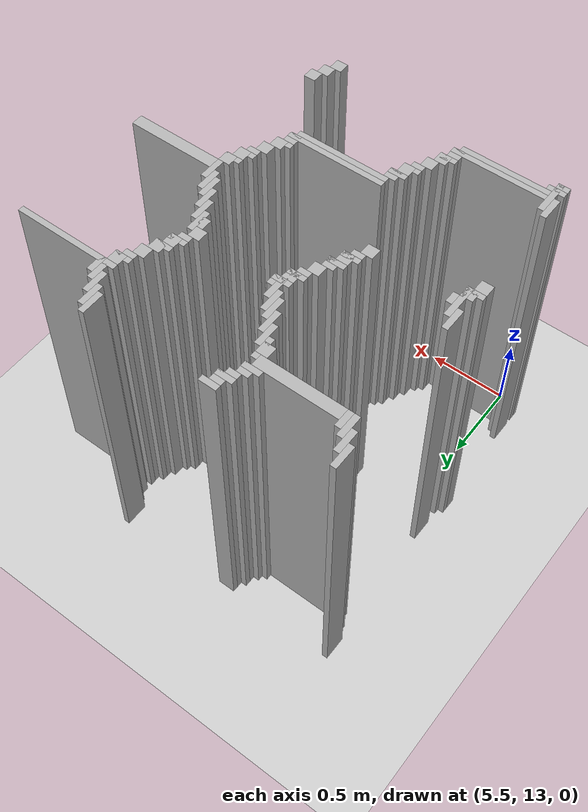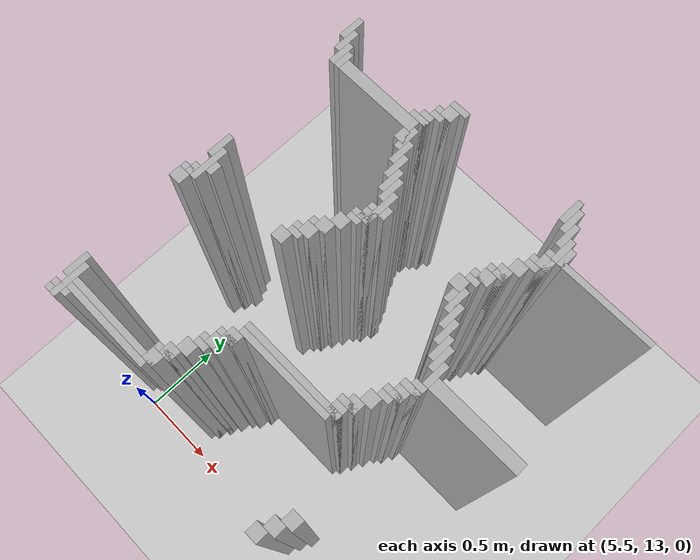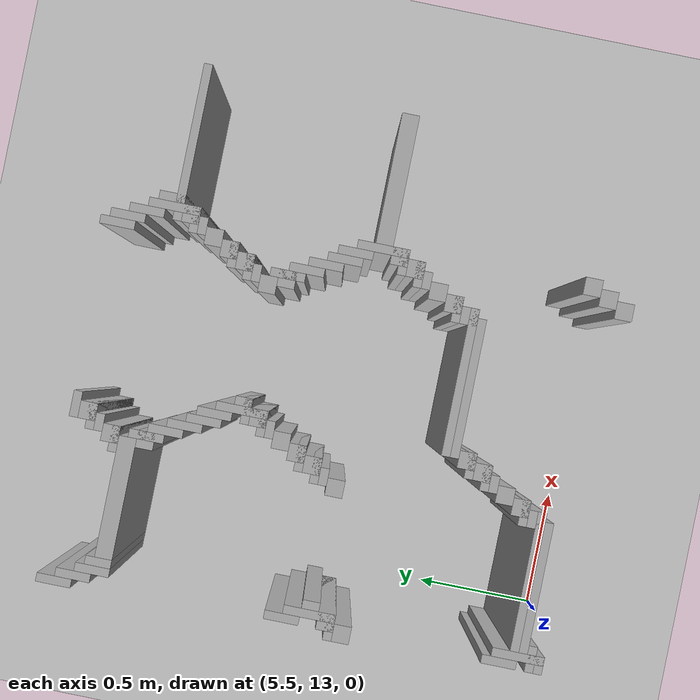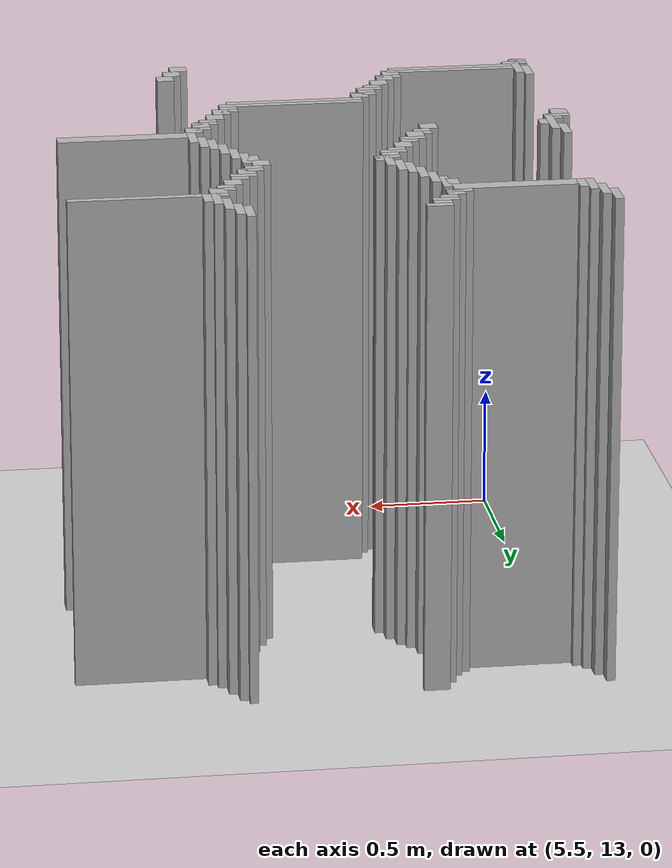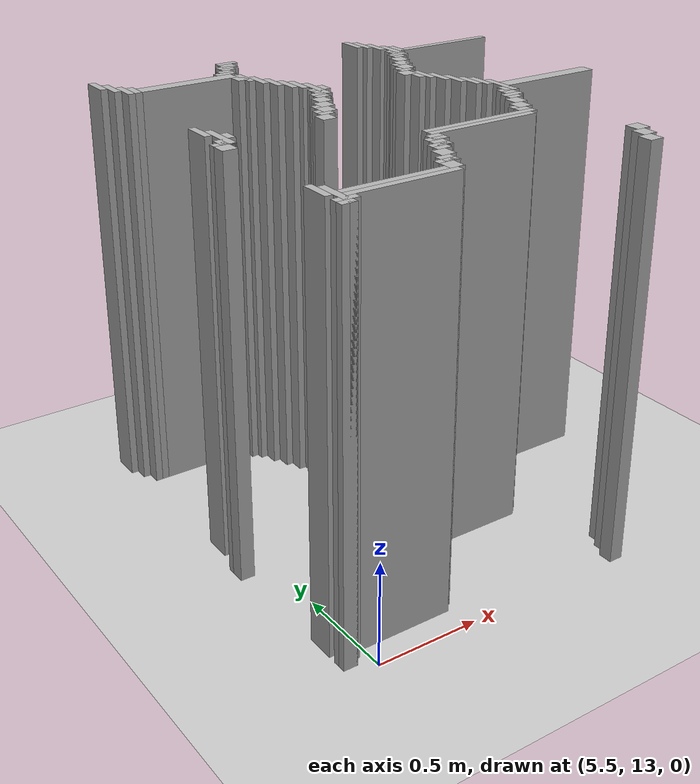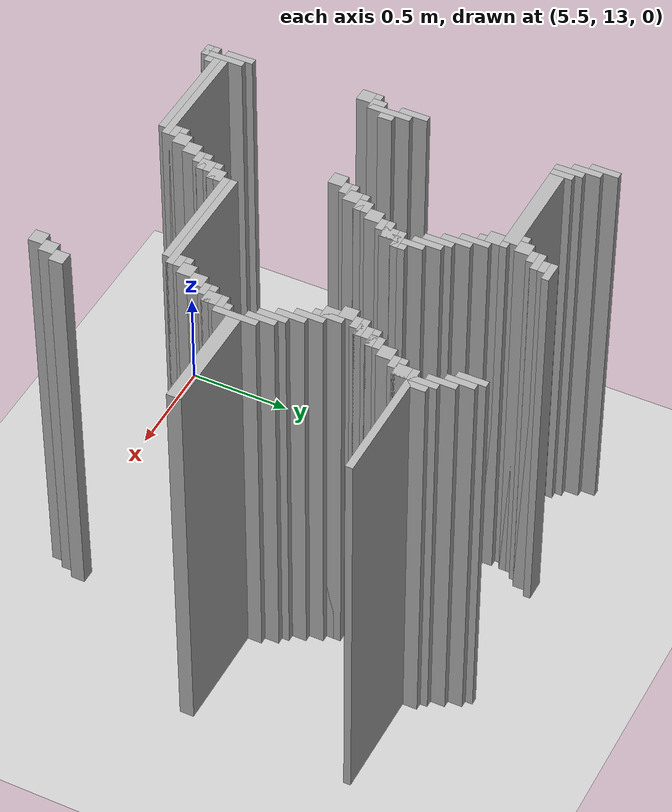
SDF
<sdf version="1.6">
 <world name="slam_world">
  <model name="ground_plane">
   <static>true</static>
   <link name="link">
    <collision name="collision">
     <geometry><plane><normal>0 0 1</normal><size>100 100</size></plane></geometry>
    </collision>
    <visual name="visual">
     <geometry><plane><normal>0 0 1</normal><size>100 100</size></plane></geometry>
     <material>
      <ambient>0.8 0.8 0.8 1</ambient>
      <diffuse>0.8 0.8 0.8 1</diffuse>
      <specular>0.8 0.8 0.8 1</specular>
     </material>
    </visual>
   </link>
  </model>
  <model name="wall_788">
   <static>true</static>
   <pose>6.769141531322505 15.034802784222737 1.0 0 0 0</pose>
   <link name="link">
    <collision name="collision">
     <geometry><box><size>0.03480278422273782 0.13921113689095127 2.0</size></box></geometry>
    </collision>
    <visual name="visual">
     <geometry><box><size>0.03480278422273782 0.13921113689095127 2.0</size></box></geometry>
     <material><ambient>0.5 0.5 0.5 1</ambient><diffuse>0.7 0.7 0.7 1</diffuse></material>
    </visual>
   </link>
  </model>
  <model name="wall_803">
   <static>true</static>
   <pose>5.342227378190255 15.0 1.0 0 0 0</pose>
   <link name="link">
    <collision name="collision">
     <geometry><box><size>0.03480278422273782 0.13921113689095127 2.0</size></box></geometry>
    </collision>
    <visual name="visual">
     <geometry><box><size>0.03480278422273782 0.13921113689095127 2.0</size></box></geometry>
     <material><ambient>0.5 0.5 0.5 1</ambient><diffuse>0.7 0.7 0.7 1</diffuse></material>
    </visual>
   </link>
  </model>
  <model name="wall_804">
   <static>true</static>
   <pose>6.038283062645012 15.052204176334106 1.0 0 0 0</pose>
   <link name="link">
    <collision name="collision">
     <geometry><box><size>0.10440835266821345 0.03480278422273782 2.0</size></box></geometry>
    </collision>
    <visual name="visual">
     <geometry><box><size>0.10440835266821345 0.03480278422273782 2.0</size></box></geometry>
     <material><ambient>0.5 0.5 0.5 1</ambient><diffuse>0.7 0.7 0.7 1</diffuse></material>
    </visual>
   </link>
  </model>
  <model name="wall_805">
   <static>true</static>
   <pose>6.803944315545244 15.0 1.0 0 0 0</pose>
   <link name="link">
    <collision name="collision">
     <geometry><box><size>0.03480278422273782 0.13921113689095127 2.0</size></box></geometry>
    </collision>
    <visual name="visual">
     <geometry><box><size>0.03480278422273782 0.13921113689095127 2.0</size></box></geometry>
     <material><ambient>0.5 0.5 0.5 1</ambient><diffuse>0.7 0.7 0.7 1</diffuse></material>
    </visual>
   </link>
  </model>
  <model name="wall_819">
   <static>true</static>
   <pose>6.020881670533642 15.0 1.0 0 0 0</pose>
   <link name="link">
    <collision name="collision">
     <geometry><box><size>0.06960556844547564 0.06960556844547564 2.0</size></box></geometry>
    </collision>
    <visual name="visual">
     <geometry><box><size>0.06960556844547564 0.06960556844547564 2.0</size></box></geometry>
     <material><ambient>0.5 0.5 0.5 1</ambient><diffuse>0.7 0.7 0.7 1</diffuse></material>
    </visual>
   </link>
  </model>
  <model name="wall_830">
   <static>true</static>
   <pose>5.377030162412993 14.930394431554523 1.0 0 0 0</pose>
   <link name="link">
    <collision name="collision">
     <geometry><box><size>0.03480278422273782 0.13921113689095127 2.0</size></box></geometry>
    </collision>
    <visual name="visual">
     <geometry><box><size>0.03480278422273782 0.13921113689095127 2.0</size></box></geometry>
     <material><ambient>0.5 0.5 0.5 1</ambient><diffuse>0.7 0.7 0.7 1</diffuse></material>
    </visual>
   </link>
  </model>
  <model name="wall_831">
   <static>true</static>
   <pose>6.003480278422273 14.982598607888631 1.0 0 0 0</pose>
   <link name="link">
    <collision name="collision">
     <geometry><box><size>0.10440835266821345 0.03480278422273782 2.0</size></box></geometry>
    </collision>
    <visual name="visual">
     <geometry><box><size>0.10440835266821345 0.03480278422273782 2.0</size></box></geometry>
     <material><ambient>0.5 0.5 0.5 1</ambient><diffuse>0.7 0.7 0.7 1</diffuse></material>
    </visual>
   </link>
  </model>
  <model name="wall_832">
   <static>true</static>
   <pose>6.838747099767981 14.930394431554523 1.0 0 0 0</pose>
   <link name="link">
    <collision name="collision">
     <geometry><box><size>0.03480278422273782 0.13921113689095127 2.0</size></box></geometry>
    </collision>
    <visual name="visual">
     <geometry><box><size>0.03480278422273782 0.13921113689095127 2.0</size></box></geometry>
     <material><ambient>0.5 0.5 0.5 1</ambient><diffuse>0.7 0.7 0.7 1</diffuse></material>
    </visual>
   </link>
  </model>
  <model name="wall_845">
   <static>true</static>
   <pose>5.986078886310905 14.947795823665892 1.0 0 0 0</pose>
   <link name="link">
    <collision name="collision">
     <geometry><box><size>0.06960556844547564 0.03480278422273782 2.0</size></box></geometry>
    </collision>
    <visual name="visual">
     <geometry><box><size>0.06960556844547564 0.03480278422273782 2.0</size></box></geometry>
     <material><ambient>0.5 0.5 0.5 1</ambient><diffuse>0.7 0.7 0.7 1</diffuse></material>
    </visual>
   </link>
  </model>
  <model name="wall_856">
   <static>true</static>
   <pose>5.41183294663573 14.860788863109049 1.0 0 0 0</pose>
   <link name="link">
    <collision name="collision">
     <geometry><box><size>0.03480278422273782 0.13921113689095127 2.0</size></box></geometry>
    </collision>
    <visual name="visual">
     <geometry><box><size>0.03480278422273782 0.13921113689095127 2.0</size></box></geometry>
     <material><ambient>0.5 0.5 0.5 1</ambient><diffuse>0.7 0.7 0.7 1</diffuse></material>
    </visual>
   </link>
  </model>
  <model name="wall_857">
   <static>true</static>
   <pose>5.951276102088166 14.895591647331786 1.0 0 0 0</pose>
   <link name="link">
    <collision name="collision">
     <geometry><box><size>0.06960556844547564 0.06960556844547564 2.0</size></box></geometry>
    </collision>
    <visual name="visual">
     <geometry><box><size>0.06960556844547564 0.06960556844547564 2.0</size></box></geometry>
     <material><ambient>0.5 0.5 0.5 1</ambient><diffuse>0.7 0.7 0.7 1</diffuse></material>
    </visual>
   </link>
  </model>
  <model name="wall_858">
   <static>true</static>
   <pose>6.8735498839907185 14.825986078886311 1.0 0 0 0</pose>
   <link name="link">
    <collision name="collision">
     <geometry><box><size>0.03480278422273782 0.2088167053364269 2.0</size></box></geometry>
    </collision>
    <visual name="visual">
     <geometry><box><size>0.03480278422273782 0.2088167053364269 2.0</size></box></geometry>
     <material><ambient>0.5 0.5 0.5 1</ambient><diffuse>0.7 0.7 0.7 1</diffuse></material>
    </visual>
   </link>
  </model>
  <model name="wall_868">
   <static>true</static>
   <pose>5.4466357308584685 14.84338747099768 1.0 0 0 0</pose>
   <link name="link">
    <collision name="collision">
     <geometry><box><size>0.03480278422273782 0.10440835266821345 2.0</size></box></geometry>
    </collision>
    <visual name="visual">
     <geometry><box><size>0.03480278422273782 0.10440835266821345 2.0</size></box></geometry>
     <material><ambient>0.5 0.5 0.5 1</ambient><diffuse>0.7 0.7 0.7 1</diffuse></material>
    </visual>
   </link>
  </model>
  <model name="wall_869">
   <static>true</static>
   <pose>5.933874709976798 14.878190255220417 1.0 0 0 0</pose>
   <link name="link">
    <collision name="collision">
     <geometry><box><size>0.10440835266821345 0.03480278422273782 2.0</size></box></geometry>
    </collision>
    <visual name="visual">
     <geometry><box><size>0.10440835266821345 0.03480278422273782 2.0</size></box></geometry>
     <material><ambient>0.5 0.5 0.5 1</ambient><diffuse>0.7 0.7 0.7 1</diffuse></material>
    </visual>
   </link>
  </model>
  <model name="wall_870">
   <static>true</static>
   <pose>6.908352668213457 14.84338747099768 1.0 0 0 0</pose>
   <link name="link">
    <collision name="collision">
     <geometry><box><size>0.03480278422273782 0.10440835266821345 2.0</size></box></geometry>
    </collision>
    <visual name="visual">
     <geometry><box><size>0.03480278422273782 0.10440835266821345 2.0</size></box></geometry>
     <material><ambient>0.5 0.5 0.5 1</ambient><diffuse>0.7 0.7 0.7 1</diffuse></material>
    </visual>
   </link>
  </model>
  <model name="wall_880">
   <static>true</static>
   <pose>5.707656612529002 14.825986078886311 1.0 0 0 0</pose>
   <link name="link">
    <collision name="collision">
     <geometry><box><size>0.4872389791183295 0.06960556844547564 2.0</size></box></geometry>
    </collision>
    <visual name="visual">
     <geometry><box><size>0.4872389791183295 0.06960556844547564 2.0</size></box></geometry>
     <material><ambient>0.5 0.5 0.5 1</ambient><diffuse>0.7 0.7 0.7 1</diffuse></material>
    </visual>
   </link>
  </model>
  <model name="wall_895">
   <static>true</static>
   <pose>5.968677494199536 14.756380510440835 1.0 0 0 0</pose>
   <link name="link">
    <collision name="collision">
     <geometry><box><size>0.03480278422273782 0.13921113689095127 2.0</size></box></geometry>
    </collision>
    <visual name="visual">
     <geometry><box><size>0.03480278422273782 0.13921113689095127 2.0</size></box></geometry>
     <material><ambient>0.5 0.5 0.5 1</ambient><diffuse>0.7 0.7 0.7 1</diffuse></material>
    </visual>
   </link>
  </model>
  <model name="wall_896">
   <static>true</static>
   <pose>7.134570765661253 14.80858468677494 1.0 0 0 0</pose>
   <link name="link">
    <collision name="collision">
     <geometry><box><size>0.6264501160092807 0.03480278422273782 2.0</size></box></geometry>
    </collision>
    <visual name="visual">
     <geometry><box><size>0.6264501160092807 0.03480278422273782 2.0</size></box></geometry>
     <material><ambient>0.5 0.5 0.5 1</ambient><diffuse>0.7 0.7 0.7 1</diffuse></material>
    </visual>
   </link>
  </model>
  <model name="wall_908">
   <static>true</static>
   <pose>5.951276102088166 14.756380510440835 1.0 0 0 0</pose>
   <link name="link">
    <collision name="collision">
     <geometry><box><size>0.06960556844547564 0.06960556844547564 2.0</size></box></geometry>
    </collision>
    <visual name="visual">
     <geometry><box><size>0.06960556844547564 0.06960556844547564 2.0</size></box></geometry>
     <material><ambient>0.5 0.5 0.5 1</ambient><diffuse>0.7 0.7 0.7 1</diffuse></material>
    </visual>
   </link>
  </model>
  <model name="wall_909">
   <static>true</static>
   <pose>6.85614849187935 14.756380510440835 1.0 0 0 0</pose>
   <link name="link">
    <collision name="collision">
     <geometry><box><size>0.06960556844547564 0.06960556844547564 2.0</size></box></geometry>
    </collision>
    <visual name="visual">
     <geometry><box><size>0.06960556844547564 0.06960556844547564 2.0</size></box></geometry>
     <material><ambient>0.5 0.5 0.5 1</ambient><diffuse>0.7 0.7 0.7 1</diffuse></material>
    </visual>
   </link>
  </model>
  <model name="wall_923">
   <static>true</static>
   <pose>6.003480278422273 14.68677494199536 1.0 0 0 0</pose>
   <link name="link">
    <collision name="collision">
     <geometry><box><size>0.03480278422273782 0.13921113689095127 2.0</size></box></geometry>
    </collision>
    <visual name="visual">
     <geometry><box><size>0.03480278422273782 0.13921113689095127 2.0</size></box></geometry>
     <material><ambient>0.5 0.5 0.5 1</ambient><diffuse>0.7 0.7 0.7 1</diffuse></material>
    </visual>
   </link>
  </model>
  <model name="wall_924">
   <static>true</static>
   <pose>6.838747099767981 14.738979118329466 1.0 0 0 0</pose>
   <link name="link">
    <collision name="collision">
     <geometry><box><size>0.10440835266821345 0.03480278422273782 2.0</size></box></geometry>
    </collision>
    <visual name="visual">
     <geometry><box><size>0.10440835266821345 0.03480278422273782 2.0</size></box></geometry>
     <material><ambient>0.5 0.5 0.5 1</ambient><diffuse>0.7 0.7 0.7 1</diffuse></material>
    </visual>
   </link>
  </model>
  <model name="wall_935">
   <static>true</static>
   <pose>6.821345707656612 14.704176334106728 1.0 0 0 0</pose>
   <link name="link">
    <collision name="collision">
     <geometry><box><size>0.06960556844547564 0.03480278422273782 2.0</size></box></geometry>
    </collision>
    <visual name="visual">
     <geometry><box><size>0.06960556844547564 0.03480278422273782 2.0</size></box></geometry>
     <material><ambient>0.5 0.5 0.5 1</ambient><diffuse>0.7 0.7 0.7 1</diffuse></material>
    </visual>
   </link>
  </model>
  <model name="wall_946">
   <static>true</static>
   <pose>6.038283062645012 14.617169373549883 1.0 0 0 0</pose>
   <link name="link">
    <collision name="collision">
     <geometry><box><size>0.03480278422273782 0.13921113689095127 2.0</size></box></geometry>
    </collision>
    <visual name="visual">
     <geometry><box><size>0.03480278422273782 0.13921113689095127 2.0</size></box></geometry>
     <material><ambient>0.5 0.5 0.5 1</ambient><diffuse>0.7 0.7 0.7 1</diffuse></material>
    </visual>
   </link>
  </model>
  <model name="wall_947">
   <static>true</static>
   <pose>6.786542923433874 14.65197215777262 1.0 0 0 0</pose>
   <link name="link">
    <collision name="collision">
     <geometry><box><size>0.06960556844547564 0.06960556844547564 2.0</size></box></geometry>
    </collision>
    <visual name="visual">
     <geometry><box><size>0.06960556844547564 0.06960556844547564 2.0</size></box></geometry>
     <material><ambient>0.5 0.5 0.5 1</ambient><diffuse>0.7 0.7 0.7 1</diffuse></material>
    </visual>
   </link>
  </model>
  <model name="wall_961">
   <static>true</static>
   <pose>6.073085846867749 14.547563805104408 1.0 0 0 0</pose>
   <link name="link">
    <collision name="collision">
     <geometry><box><size>0.03480278422273782 0.13921113689095127 2.0</size></box></geometry>
    </collision>
    <visual name="visual">
     <geometry><box><size>0.03480278422273782 0.13921113689095127 2.0</size></box></geometry>
     <material><ambient>0.5 0.5 0.5 1</ambient><diffuse>0.7 0.7 0.7 1</diffuse></material>
    </visual>
   </link>
  </model>
  <model name="wall_962">
   <static>true</static>
   <pose>6.751740139211137 14.582366589327146 1.0 0 0 0</pose>
   <link name="link">
    <collision name="collision">
     <geometry><box><size>0.06960556844547564 0.06960556844547564 2.0</size></box></geometry>
    </collision>
    <visual name="visual">
     <geometry><box><size>0.06960556844547564 0.06960556844547564 2.0</size></box></geometry>
     <material><ambient>0.5 0.5 0.5 1</ambient><diffuse>0.7 0.7 0.7 1</diffuse></material>
    </visual>
   </link>
  </model>
  <model name="wall_976">
   <static>true</static>
   <pose>6.107888631090487 14.512761020881669 1.0 0 0 0</pose>
   <link name="link">
    <collision name="collision">
     <geometry><box><size>0.03480278422273782 0.13921113689095127 2.0</size></box></geometry>
    </collision>
    <visual name="visual">
     <geometry><box><size>0.03480278422273782 0.13921113689095127 2.0</size></box></geometry>
     <material><ambient>0.5 0.5 0.5 1</ambient><diffuse>0.7 0.7 0.7 1</diffuse></material>
    </visual>
   </link>
  </model>
  <model name="wall_977">
   <static>true</static>
   <pose>6.734338747099768 14.564965197215777 1.0 0 0 0</pose>
   <link name="link">
    <collision name="collision">
     <geometry><box><size>0.10440835266821345 0.03480278422273782 2.0</size></box></geometry>
    </collision>
    <visual name="visual">
     <geometry><box><size>0.10440835266821345 0.03480278422273782 2.0</size></box></geometry>
     <material><ambient>0.5 0.5 0.5 1</ambient><diffuse>0.7 0.7 0.7 1</diffuse></material>
    </visual>
   </link>
  </model>
  <model name="wall_988">
   <static>true</static>
   <pose>6.716937354988398 14.512761020881669 1.0 0 0 0</pose>
   <link name="link">
    <collision name="collision">
     <geometry><box><size>0.06960556844547564 0.06960556844547564 2.0</size></box></geometry>
    </collision>
    <visual name="visual">
     <geometry><box><size>0.06960556844547564 0.06960556844547564 2.0</size></box></geometry>
     <material><ambient>0.5 0.5 0.5 1</ambient><diffuse>0.7 0.7 0.7 1</diffuse></material>
    </visual>
   </link>
  </model>
  <model name="wall_997">
   <static>true</static>
   <pose>6.142691415313225 14.408352668213457 1.0 0 0 0</pose>
   <link name="link">
    <collision name="collision">
     <geometry><box><size>0.03480278422273782 0.2088167053364269 2.0</size></box></geometry>
    </collision>
    <visual name="visual">
     <geometry><box><size>0.03480278422273782 0.2088167053364269 2.0</size></box></geometry>
     <material><ambient>0.5 0.5 0.5 1</ambient><diffuse>0.7 0.7 0.7 1</diffuse></material>
    </visual>
   </link>
  </model>
  <model name="wall_998">
   <static>true</static>
   <pose>6.69953596287703 14.4953596287703 1.0 0 0 0</pose>
   <link name="link">
    <collision name="collision">
     <geometry><box><size>0.10440835266821345 0.03480278422273782 2.0</size></box></geometry>
    </collision>
    <visual name="visual">
     <geometry><box><size>0.10440835266821345 0.03480278422273782 2.0</size></box></geometry>
     <material><ambient>0.5 0.5 0.5 1</ambient><diffuse>0.7 0.7 0.7 1</diffuse></material>
    </visual>
   </link>
  </model>
  <model name="wall_1009">
   <static>true</static>
   <pose>6.682134570765661 14.460556844547563 1.0 0 0 0</pose>
   <link name="link">
    <collision name="collision">
     <geometry><box><size>0.06960556844547564 0.03480278422273782 2.0</size></box></geometry>
    </collision>
    <visual name="visual">
     <geometry><box><size>0.06960556844547564 0.03480278422273782 2.0</size></box></geometry>
     <material><ambient>0.5 0.5 0.5 1</ambient><diffuse>0.7 0.7 0.7 1</diffuse></material>
    </visual>
   </link>
  </model>
  <model name="wall_1018">
   <static>true</static>
   <pose>6.177494199535962 14.408352668213457 1.0 0 0 0</pose>
   <link name="link">
    <collision name="collision">
     <geometry><box><size>0.03480278422273782 0.06960556844547564 2.0</size></box></geometry>
    </collision>
    <visual name="visual">
     <geometry><box><size>0.03480278422273782 0.06960556844547564 2.0</size></box></geometry>
     <material><ambient>0.5 0.5 0.5 1</ambient><diffuse>0.7 0.7 0.7 1</diffuse></material>
    </visual>
   </link>
  </model>
  <model name="wall_1019">
   <static>true</static>
   <pose>6.647331786542924 14.408352668213457 1.0 0 0 0</pose>
   <link name="link">
    <collision name="collision">
     <geometry><box><size>0.06960556844547564 0.06960556844547564 2.0</size></box></geometry>
    </collision>
    <visual name="visual">
     <geometry><box><size>0.06960556844547564 0.06960556844547564 2.0</size></box></geometry>
     <material><ambient>0.5 0.5 0.5 1</ambient><diffuse>0.7 0.7 0.7 1</diffuse></material>
    </visual>
   </link>
  </model>
  <model name="wall_1031">
   <static>true</static>
   <pose>6.142691415313225 14.390951276102088 1.0 0 0 0</pose>
   <link name="link">
    <collision name="collision">
     <geometry><box><size>0.10440835266821345 0.03480278422273782 2.0</size></box></geometry>
    </collision>
    <visual name="visual">
     <geometry><box><size>0.10440835266821345 0.03480278422273782 2.0</size></box></geometry>
     <material><ambient>0.5 0.5 0.5 1</ambient><diffuse>0.7 0.7 0.7 1</diffuse></material>
    </visual>
   </link>
  </model>
  <model name="wall_1032">
   <static>true</static>
   <pose>6.69953596287703 14.33874709976798 1.0 0 0 0</pose>
   <link name="link">
    <collision name="collision">
     <geometry><box><size>0.03480278422273782 0.13921113689095127 2.0</size></box></geometry>
    </collision>
    <visual name="visual">
     <geometry><box><size>0.03480278422273782 0.13921113689095127 2.0</size></box></geometry>
     <material><ambient>0.5 0.5 0.5 1</ambient><diffuse>0.7 0.7 0.7 1</diffuse></material>
    </visual>
   </link>
  </model>
  <model name="wall_1043">
   <static>true</static>
   <pose>6.125290023201856 14.33874709976798 1.0 0 0 0</pose>
   <link name="link">
    <collision name="collision">
     <geometry><box><size>0.06960556844547564 0.06960556844547564 2.0</size></box></geometry>
    </collision>
    <visual name="visual">
     <geometry><box><size>0.06960556844547564 0.06960556844547564 2.0</size></box></geometry>
     <material><ambient>0.5 0.5 0.5 1</ambient><diffuse>0.7 0.7 0.7 1</diffuse></material>
    </visual>
   </link>
  </model>
  <model name="wall_1044">
   <static>true</static>
   <pose>6.682134570765661 14.33874709976798 1.0 0 0 0</pose>
   <link name="link">
    <collision name="collision">
     <geometry><box><size>0.06960556844547564 0.06960556844547564 2.0</size></box></geometry>
    </collision>
    <visual name="visual">
     <geometry><box><size>0.06960556844547564 0.06960556844547564 2.0</size></box></geometry>
     <material><ambient>0.5 0.5 0.5 1</ambient><diffuse>0.7 0.7 0.7 1</diffuse></material>
    </visual>
   </link>
  </model>
  <model name="wall_1056">
   <static>true</static>
   <pose>6.107888631090487 14.321345707656612 1.0 0 0 0</pose>
   <link name="link">
    <collision name="collision">
     <geometry><box><size>0.10440835266821345 0.03480278422273782 2.0</size></box></geometry>
    </collision>
    <visual name="visual">
     <geometry><box><size>0.10440835266821345 0.03480278422273782 2.0</size></box></geometry>
     <material><ambient>0.5 0.5 0.5 1</ambient><diffuse>0.7 0.7 0.7 1</diffuse></material>
    </visual>
   </link>
  </model>
  <model name="wall_1057">
   <static>true</static>
   <pose>6.734338747099768 14.269141531322505 1.0 0 0 0</pose>
   <link name="link">
    <collision name="collision">
     <geometry><box><size>0.03480278422273782 0.13921113689095127 2.0</size></box></geometry>
    </collision>
    <visual name="visual">
     <geometry><box><size>0.03480278422273782 0.13921113689095127 2.0</size></box></geometry>
     <material><ambient>0.5 0.5 0.5 1</ambient><diffuse>0.7 0.7 0.7 1</diffuse></material>
    </visual>
   </link>
  </model>
  <model name="wall_1067">
   <static>true</static>
   <pose>6.090487238979118 14.286542923433874 1.0 0 0 0</pose>
   <link name="link">
    <collision name="collision">
     <geometry><box><size>0.06960556844547564 0.03480278422273782 2.0</size></box></geometry>
    </collision>
    <visual name="visual">
     <geometry><box><size>0.06960556844547564 0.03480278422273782 2.0</size></box></geometry>
     <material><ambient>0.5 0.5 0.5 1</ambient><diffuse>0.7 0.7 0.7 1</diffuse></material>
    </visual>
   </link>
  </model>
  <model name="wall_1077">
   <static>true</static>
   <pose>6.05568445475638 14.234338747099768 1.0 0 0 0</pose>
   <link name="link">
    <collision name="collision">
     <geometry><box><size>0.06960556844547564 0.06960556844547564 2.0</size></box></geometry>
    </collision>
    <visual name="visual">
     <geometry><box><size>0.06960556844547564 0.06960556844547564 2.0</size></box></geometry>
     <material><ambient>0.5 0.5 0.5 1</ambient><diffuse>0.7 0.7 0.7 1</diffuse></material>
    </visual>
   </link>
  </model>
  <model name="wall_1078">
   <static>true</static>
   <pose>6.769141531322505 14.199535962877029 1.0 0 0 0</pose>
   <link name="link">
    <collision name="collision">
     <geometry><box><size>0.03480278422273782 0.13921113689095127 2.0</size></box></geometry>
    </collision>
    <visual name="visual">
     <geometry><box><size>0.03480278422273782 0.13921113689095127 2.0</size></box></geometry>
     <material><ambient>0.5 0.5 0.5 1</ambient><diffuse>0.7 0.7 0.7 1</diffuse></material>
    </visual>
   </link>
  </model>
  <model name="wall_1090">
   <static>true</static>
   <pose>6.020881670533642 14.164733178654291 1.0 0 0 0</pose>
   <link name="link">
    <collision name="collision">
     <geometry><box><size>0.06960556844547564 0.06960556844547564 2.0</size></box></geometry>
    </collision>
    <visual name="visual">
     <geometry><box><size>0.06960556844547564 0.06960556844547564 2.0</size></box></geometry>
     <material><ambient>0.5 0.5 0.5 1</ambient><diffuse>0.7 0.7 0.7 1</diffuse></material>
    </visual>
   </link>
  </model>
  <model name="wall_1091">
   <static>true</static>
   <pose>6.803944315545244 14.129930394431554 1.0 0 0 0</pose>
   <link name="link">
    <collision name="collision">
     <geometry><box><size>0.03480278422273782 0.13921113689095127 2.0</size></box></geometry>
    </collision>
    <visual name="visual">
     <geometry><box><size>0.03480278422273782 0.13921113689095127 2.0</size></box></geometry>
     <material><ambient>0.5 0.5 0.5 1</ambient><diffuse>0.7 0.7 0.7 1</diffuse></material>
    </visual>
   </link>
  </model>
  <model name="wall_1102">
   <static>true</static>
   <pose>5.377030162412993 14.095127610208817 1.0 0 0 0</pose>
   <link name="link">
    <collision name="collision">
     <geometry><box><size>0.03480278422273782 0.13921113689095127 2.0</size></box></geometry>
    </collision>
    <visual name="visual">
     <geometry><box><size>0.03480278422273782 0.13921113689095127 2.0</size></box></geometry>
     <material><ambient>0.5 0.5 0.5 1</ambient><diffuse>0.7 0.7 0.7 1</diffuse></material>
    </visual>
   </link>
  </model>
  <model name="wall_1103">
   <static>true</static>
   <pose>6.003480278422273 14.147331786542923 1.0 0 0 0</pose>
   <link name="link">
    <collision name="collision">
     <geometry><box><size>0.10440835266821345 0.03480278422273782 2.0</size></box></geometry>
    </collision>
    <visual name="visual">
     <geometry><box><size>0.10440835266821345 0.03480278422273782 2.0</size></box></geometry>
     <material><ambient>0.5 0.5 0.5 1</ambient><diffuse>0.7 0.7 0.7 1</diffuse></material>
    </visual>
   </link>
  </model>
  <model name="wall_1104">
   <static>true</static>
   <pose>6.838747099767981 14.095127610208817 1.0 0 0 0</pose>
   <link name="link">
    <collision name="collision">
     <geometry><box><size>0.03480278422273782 0.13921113689095127 2.0</size></box></geometry>
    </collision>
    <visual name="visual">
     <geometry><box><size>0.03480278422273782 0.13921113689095127 2.0</size></box></geometry>
     <material><ambient>0.5 0.5 0.5 1</ambient><diffuse>0.7 0.7 0.7 1</diffuse></material>
    </visual>
   </link>
  </model>
  <model name="wall_1114">
   <static>true</static>
   <pose>5.986078886310905 14.095127610208817 1.0 0 0 0</pose>
   <link name="link">
    <collision name="collision">
     <geometry><box><size>0.06960556844547564 0.06960556844547564 2.0</size></box></geometry>
    </collision>
    <visual name="visual">
     <geometry><box><size>0.06960556844547564 0.06960556844547564 2.0</size></box></geometry>
     <material><ambient>0.5 0.5 0.5 1</ambient><diffuse>0.7 0.7 0.7 1</diffuse></material>
    </visual>
   </link>
  </model>
  <model name="wall_1122">
   <static>true</static>
   <pose>5.41183294663573 13.990719257540603 1.0 0 0 0</pose>
   <link name="link">
    <collision name="collision">
     <geometry><box><size>0.03480278422273782 0.2088167053364269 2.0</size></box></geometry>
    </collision>
    <visual name="visual">
     <geometry><box><size>0.03480278422273782 0.2088167053364269 2.0</size></box></geometry>
     <material><ambient>0.5 0.5 0.5 1</ambient><diffuse>0.7 0.7 0.7 1</diffuse></material>
    </visual>
   </link>
  </model>
  <model name="wall_1123">
   <static>true</static>
   <pose>5.968677494199536 14.077726218097448 1.0 0 0 0</pose>
   <link name="link">
    <collision name="collision">
     <geometry><box><size>0.10440835266821345 0.03480278422273782 2.0</size></box></geometry>
    </collision>
    <visual name="visual">
     <geometry><box><size>0.10440835266821345 0.03480278422273782 2.0</size></box></geometry>
     <material><ambient>0.5 0.5 0.5 1</ambient><diffuse>0.7 0.7 0.7 1</diffuse></material>
    </visual>
   </link>
  </model>
  <model name="wall_1124">
   <static>true</static>
   <pose>6.8735498839907185 13.990719257540603 1.0 0 0 0</pose>
   <link name="link">
    <collision name="collision">
     <geometry><box><size>0.03480278422273782 0.2088167053364269 2.0</size></box></geometry>
    </collision>
    <visual name="visual">
     <geometry><box><size>0.03480278422273782 0.2088167053364269 2.0</size></box></geometry>
     <material><ambient>0.5 0.5 0.5 1</ambient><diffuse>0.7 0.7 0.7 1</diffuse></material>
    </visual>
   </link>
  </model>
  <model name="wall_1134">
   <static>true</static>
   <pose>5.951276102088166 14.042923433874709 1.0 0 0 0</pose>
   <link name="link">
    <collision name="collision">
     <geometry><box><size>0.06960556844547564 0.03480278422273782 2.0</size></box></geometry>
    </collision>
    <visual name="visual">
     <geometry><box><size>0.06960556844547564 0.03480278422273782 2.0</size></box></geometry>
     <material><ambient>0.5 0.5 0.5 1</ambient><diffuse>0.7 0.7 0.7 1</diffuse></material>
    </visual>
   </link>
  </model>
  <model name="wall_1142">
   <static>true</static>
   <pose>5.4466357308584685 13.990719257540603 1.0 0 0 0</pose>
   <link name="link">
    <collision name="collision">
     <geometry><box><size>0.03480278422273782 0.06960556844547564 2.0</size></box></geometry>
    </collision>
    <visual name="visual">
     <geometry><box><size>0.03480278422273782 0.06960556844547564 2.0</size></box></geometry>
     <material><ambient>0.5 0.5 0.5 1</ambient><diffuse>0.7 0.7 0.7 1</diffuse></material>
    </visual>
   </link>
  </model>
  <model name="wall_1143">
   <static>true</static>
   <pose>5.916473317865429 13.990719257540603 1.0 0 0 0</pose>
   <link name="link">
    <collision name="collision">
     <geometry><box><size>0.06960556844547564 0.06960556844547564 2.0</size></box></geometry>
    </collision>
    <visual name="visual">
     <geometry><box><size>0.06960556844547564 0.06960556844547564 2.0</size></box></geometry>
     <material><ambient>0.5 0.5 0.5 1</ambient><diffuse>0.7 0.7 0.7 1</diffuse></material>
    </visual>
   </link>
  </model>
  <model name="wall_1144">
   <static>true</static>
   <pose>7.151972157772621 13.990719257540603 1.0 0 0 0</pose>
   <link name="link">
    <collision name="collision">
     <geometry><box><size>0.5220417633410672 0.06960556844547564 2.0</size></box></geometry>
    </collision>
    <visual name="visual">
     <geometry><box><size>0.5220417633410672 0.06960556844547564 2.0</size></box></geometry>
     <material><ambient>0.5 0.5 0.5 1</ambient><diffuse>0.7 0.7 0.7 1</diffuse></material>
    </visual>
   </link>
  </model>
  <model name="wall_1158">
   <static>true</static>
   <pose>5.3944315545243615 13.921113689095128 1.0 0 0 0</pose>
   <link name="link">
    <collision name="collision">
     <geometry><box><size>0.06960556844547564 0.06960556844547564 2.0</size></box></geometry>
    </collision>
    <visual name="visual">
     <geometry><box><size>0.06960556844547564 0.06960556844547564 2.0</size></box></geometry>
     <material><ambient>0.5 0.5 0.5 1</ambient><diffuse>0.7 0.7 0.7 1</diffuse></material>
    </visual>
   </link>
  </model>
  <model name="wall_1159">
   <static>true</static>
   <pose>6.85614849187935 13.921113689095128 1.0 0 0 0</pose>
   <link name="link">
    <collision name="collision">
     <geometry><box><size>0.06960556844547564 0.06960556844547564 2.0</size></box></geometry>
    </collision>
    <visual name="visual">
     <geometry><box><size>0.06960556844547564 0.06960556844547564 2.0</size></box></geometry>
     <material><ambient>0.5 0.5 0.5 1</ambient><diffuse>0.7 0.7 0.7 1</diffuse></material>
    </visual>
   </link>
  </model>
  <model name="wall_1174">
   <static>true</static>
   <pose>5.377030162412993 13.903712296983759 1.0 0 0 0</pose>
   <link name="link">
    <collision name="collision">
     <geometry><box><size>0.10440835266821345 0.03480278422273782 2.0</size></box></geometry>
    </collision>
    <visual name="visual">
     <geometry><box><size>0.10440835266821345 0.03480278422273782 2.0</size></box></geometry>
     <material><ambient>0.5 0.5 0.5 1</ambient><diffuse>0.7 0.7 0.7 1</diffuse></material>
    </visual>
   </link>
  </model>
  <model name="wall_1175">
   <static>true</static>
   <pose>6.838747099767981 13.903712296983759 1.0 0 0 0</pose>
   <link name="link">
    <collision name="collision">
     <geometry><box><size>0.10440835266821345 0.03480278422273782 2.0</size></box></geometry>
    </collision>
    <visual name="visual">
     <geometry><box><size>0.10440835266821345 0.03480278422273782 2.0</size></box></geometry>
     <material><ambient>0.5 0.5 0.5 1</ambient><diffuse>0.7 0.7 0.7 1</diffuse></material>
    </visual>
   </link>
  </model>
  <model name="wall_1190">
   <static>true</static>
   <pose>5.359628770301624 13.851508120649651 1.0 0 0 0</pose>
   <link name="link">
    <collision name="collision">
     <geometry><box><size>0.06960556844547564 0.06960556844547564 2.0</size></box></geometry>
    </collision>
    <visual name="visual">
     <geometry><box><size>0.06960556844547564 0.06960556844547564 2.0</size></box></geometry>
     <material><ambient>0.5 0.5 0.5 1</ambient><diffuse>0.7 0.7 0.7 1</diffuse></material>
    </visual>
   </link>
  </model>
  <model name="wall_1191">
   <static>true</static>
   <pose>6.821345707656612 13.851508120649651 1.0 0 0 0</pose>
   <link name="link">
    <collision name="collision">
     <geometry><box><size>0.06960556844547564 0.06960556844547564 2.0</size></box></geometry>
    </collision>
    <visual name="visual">
     <geometry><box><size>0.06960556844547564 0.06960556844547564 2.0</size></box></geometry>
     <material><ambient>0.5 0.5 0.5 1</ambient><diffuse>0.7 0.7 0.7 1</diffuse></material>
    </visual>
   </link>
  </model>
  <model name="wall_1207">
   <static>true</static>
   <pose>6.803944315545244 13.834106728538282 1.0 0 0 0</pose>
   <link name="link">
    <collision name="collision">
     <geometry><box><size>0.10440835266821345 0.03480278422273782 2.0</size></box></geometry>
    </collision>
    <visual name="visual">
     <geometry><box><size>0.10440835266821345 0.03480278422273782 2.0</size></box></geometry>
     <material><ambient>0.5 0.5 0.5 1</ambient><diffuse>0.7 0.7 0.7 1</diffuse></material>
    </visual>
   </link>
  </model>
  <model name="wall_1219">
   <static>true</static>
   <pose>6.786542923433874 13.799303944315545 1.0 0 0 0</pose>
   <link name="link">
    <collision name="collision">
     <geometry><box><size>0.06960556844547564 0.03480278422273782 2.0</size></box></geometry>
    </collision>
    <visual name="visual">
     <geometry><box><size>0.06960556844547564 0.03480278422273782 2.0</size></box></geometry>
     <material><ambient>0.5 0.5 0.5 1</ambient><diffuse>0.7 0.7 0.7 1</diffuse></material>
    </visual>
   </link>
  </model>
  <model name="wall_1231">
   <static>true</static>
   <pose>6.751740139211137 13.747099767981437 1.0 0 0 0</pose>
   <link name="link">
    <collision name="collision">
     <geometry><box><size>0.06960556844547564 0.06960556844547564 2.0</size></box></geometry>
    </collision>
    <visual name="visual">
     <geometry><box><size>0.06960556844547564 0.06960556844547564 2.0</size></box></geometry>
     <material><ambient>0.5 0.5 0.5 1</ambient><diffuse>0.7 0.7 0.7 1</diffuse></material>
    </visual>
   </link>
  </model>
  <model name="wall_1247">
   <static>true</static>
   <pose>6.716937354988398 13.677494199535962 1.0 0 0 0</pose>
   <link name="link">
    <collision name="collision">
     <geometry><box><size>0.06960556844547564 0.06960556844547564 2.0</size></box></geometry>
    </collision>
    <visual name="visual">
     <geometry><box><size>0.06960556844547564 0.06960556844547564 2.0</size></box></geometry>
     <material><ambient>0.5 0.5 0.5 1</ambient><diffuse>0.7 0.7 0.7 1</diffuse></material>
    </visual>
   </link>
  </model>
  <model name="wall_1263">
   <static>true</static>
   <pose>6.69953596287703 13.660092807424594 1.0 0 0 0</pose>
   <link name="link">
    <collision name="collision">
     <geometry><box><size>0.10440835266821345 0.03480278422273782 2.0</size></box></geometry>
    </collision>
    <visual name="visual">
     <geometry><box><size>0.10440835266821345 0.03480278422273782 2.0</size></box></geometry>
     <material><ambient>0.5 0.5 0.5 1</ambient><diffuse>0.7 0.7 0.7 1</diffuse></material>
    </visual>
   </link>
  </model>
  <model name="wall_1275">
   <static>true</static>
   <pose>6.682134570765661 13.607888631090487 1.0 0 0 0</pose>
   <link name="link">
    <collision name="collision">
     <geometry><box><size>0.06960556844547564 0.06960556844547564 2.0</size></box></geometry>
    </collision>
    <visual name="visual">
     <geometry><box><size>0.06960556844547564 0.06960556844547564 2.0</size></box></geometry>
     <material><ambient>0.5 0.5 0.5 1</ambient><diffuse>0.7 0.7 0.7 1</diffuse></material>
    </visual>
   </link>
  </model>
  <model name="wall_1287">
   <static>true</static>
   <pose>6.421113689095128 13.590487238979117 1.0 0 0 0</pose>
   <link name="link">
    <collision name="collision">
     <geometry><box><size>0.5916473317865429 0.03480278422273782 2.0</size></box></geometry>
    </collision>
    <visual name="visual">
     <geometry><box><size>0.5916473317865429 0.03480278422273782 2.0</size></box></geometry>
     <material><ambient>0.5 0.5 0.5 1</ambient><diffuse>0.7 0.7 0.7 1</diffuse></material>
    </visual>
   </link>
  </model>
  <model name="wall_1298">
   <static>true</static>
   <pose>6.403712296983758 13.55568445475638 1.0 0 0 0</pose>
   <link name="link">
    <collision name="collision">
     <geometry><box><size>0.5568445475638051 0.03480278422273782 2.0</size></box></geometry>
    </collision>
    <visual name="visual">
     <geometry><box><size>0.5568445475638051 0.03480278422273782 2.0</size></box></geometry>
     <material><ambient>0.5 0.5 0.5 1</ambient><diffuse>0.7 0.7 0.7 1</diffuse></material>
    </visual>
   </link>
  </model>
  <model name="wall_1308">
   <static>true</static>
   <pose>6.125290023201856 13.503480278422273 1.0 0 0 0</pose>
   <link name="link">
    <collision name="collision">
     <geometry><box><size>0.06960556844547564 0.06960556844547564 2.0</size></box></geometry>
    </collision>
    <visual name="visual">
     <geometry><box><size>0.06960556844547564 0.06960556844547564 2.0</size></box></geometry>
     <material><ambient>0.5 0.5 0.5 1</ambient><diffuse>0.7 0.7 0.7 1</diffuse></material>
    </visual>
   </link>
  </model>
  <model name="wall_1322">
   <static>true</static>
   <pose>6.107888631090487 13.486078886310905 1.0 0 0 0</pose>
   <link name="link">
    <collision name="collision">
     <geometry><box><size>0.10440835266821345 0.03480278422273782 2.0</size></box></geometry>
    </collision>
    <visual name="visual">
     <geometry><box><size>0.10440835266821345 0.03480278422273782 2.0</size></box></geometry>
     <material><ambient>0.5 0.5 0.5 1</ambient><diffuse>0.7 0.7 0.7 1</diffuse></material>
    </visual>
   </link>
  </model>
  <model name="wall_1336">
   <static>true</static>
   <pose>6.090487238979118 13.433874709976797 1.0 0 0 0</pose>
   <link name="link">
    <collision name="collision">
     <geometry><box><size>0.06960556844547564 0.06960556844547564 2.0</size></box></geometry>
    </collision>
    <visual name="visual">
     <geometry><box><size>0.06960556844547564 0.06960556844547564 2.0</size></box></geometry>
     <material><ambient>0.5 0.5 0.5 1</ambient><diffuse>0.7 0.7 0.7 1</diffuse></material>
    </visual>
   </link>
  </model>
  <model name="wall_1350">
   <static>true</static>
   <pose>6.073085846867749 13.416473317865428 1.0 0 0 0</pose>
   <link name="link">
    <collision name="collision">
     <geometry><box><size>0.10440835266821345 0.03480278422273782 2.0</size></box></geometry>
    </collision>
    <visual name="visual">
     <geometry><box><size>0.10440835266821345 0.03480278422273782 2.0</size></box></geometry>
     <material><ambient>0.5 0.5 0.5 1</ambient><diffuse>0.7 0.7 0.7 1</diffuse></material>
    </visual>
   </link>
  </model>
  <model name="wall_1362">
   <static>true</static>
   <pose>6.05568445475638 13.38167053364269 1.0 0 0 0</pose>
   <link name="link">
    <collision name="collision">
     <geometry><box><size>0.06960556844547564 0.03480278422273782 2.0</size></box></geometry>
    </collision>
    <visual name="visual">
     <geometry><box><size>0.06960556844547564 0.03480278422273782 2.0</size></box></geometry>
     <material><ambient>0.5 0.5 0.5 1</ambient><diffuse>0.7 0.7 0.7 1</diffuse></material>
    </visual>
   </link>
  </model>
  <model name="wall_1373">
   <static>true</static>
   <pose>6.020881670533642 13.329466357308585 1.0 0 0 0</pose>
   <link name="link">
    <collision name="collision">
     <geometry><box><size>0.06960556844547564 0.06960556844547564 2.0</size></box></geometry>
    </collision>
    <visual name="visual">
     <geometry><box><size>0.06960556844547564 0.06960556844547564 2.0</size></box></geometry>
     <material><ambient>0.5 0.5 0.5 1</ambient><diffuse>0.7 0.7 0.7 1</diffuse></material>
    </visual>
   </link>
  </model>
  <model name="wall_1386">
   <static>true</static>
   <pose>5.377030162412993 13.22505800464037 1.0 0 0 0</pose>
   <link name="link">
    <collision name="collision">
     <geometry><box><size>0.03480278422273782 0.13921113689095127 2.0</size></box></geometry>
    </collision>
    <visual name="visual">
     <geometry><box><size>0.03480278422273782 0.13921113689095127 2.0</size></box></geometry>
     <material><ambient>0.5 0.5 0.5 1</ambient><diffuse>0.7 0.7 0.7 1</diffuse></material>
    </visual>
   </link>
  </model>
  <model name="wall_1387">
   <static>true</static>
   <pose>5.986078886310905 13.259860788863108 1.0 0 0 0</pose>
   <link name="link">
    <collision name="collision">
     <geometry><box><size>0.06960556844547564 0.06960556844547564 2.0</size></box></geometry>
    </collision>
    <visual name="visual">
     <geometry><box><size>0.06960556844547564 0.06960556844547564 2.0</size></box></geometry>
     <material><ambient>0.5 0.5 0.5 1</ambient><diffuse>0.7 0.7 0.7 1</diffuse></material>
    </visual>
   </link>
  </model>
  <model name="wall_1400">
   <static>true</static>
   <pose>5.41183294663573 13.155452436194896 1.0 0 0 0</pose>
   <link name="link">
    <collision name="collision">
     <geometry><box><size>0.03480278422273782 0.2088167053364269 2.0</size></box></geometry>
    </collision>
    <visual name="visual">
     <geometry><box><size>0.03480278422273782 0.2088167053364269 2.0</size></box></geometry>
     <material><ambient>0.5 0.5 0.5 1</ambient><diffuse>0.7 0.7 0.7 1</diffuse></material>
    </visual>
   </link>
  </model>
  <model name="wall_1401">
   <static>true</static>
   <pose>5.968677494199536 13.24245939675174 1.0 0 0 0</pose>
   <link name="link">
    <collision name="collision">
     <geometry><box><size>0.10440835266821345 0.03480278422273782 2.0</size></box></geometry>
    </collision>
    <visual name="visual">
     <geometry><box><size>0.10440835266821345 0.03480278422273782 2.0</size></box></geometry>
     <material><ambient>0.5 0.5 0.5 1</ambient><diffuse>0.7 0.7 0.7 1</diffuse></material>
    </visual>
   </link>
  </model>
  <model name="wall_1413">
   <static>true</static>
   <pose>5.951276102088166 13.190255220417633 1.0 0 0 0</pose>
   <link name="link">
    <collision name="collision">
     <geometry><box><size>0.06960556844547564 0.06960556844547564 2.0</size></box></geometry>
    </collision>
    <visual name="visual">
     <geometry><box><size>0.06960556844547564 0.06960556844547564 2.0</size></box></geometry>
     <material><ambient>0.5 0.5 0.5 1</ambient><diffuse>0.7 0.7 0.7 1</diffuse></material>
    </visual>
   </link>
  </model>
  <model name="wall_1423">
   <static>true</static>
   <pose>5.707656612529002 13.172853828306264 1.0 0 0 0</pose>
   <link name="link">
    <collision name="collision">
     <geometry><box><size>0.5568445475638051 0.03480278422273782 2.0</size></box></geometry>
    </collision>
    <visual name="visual">
     <geometry><box><size>0.5568445475638051 0.03480278422273782 2.0</size></box></geometry>
     <material><ambient>0.5 0.5 0.5 1</ambient><diffuse>0.7 0.7 0.7 1</diffuse></material>
    </visual>
   </link>
  </model>
  <model name="wall_1424">
   <static>true</static>
   <pose>6.890951276102088 13.155452436194896 1.0 0 0 0</pose>
   <link name="link">
    <collision name="collision">
     <geometry><box><size>0.06960556844547564 0.06960556844547564 2.0</size></box></geometry>
    </collision>
    <visual name="visual">
     <geometry><box><size>0.06960556844547564 0.06960556844547564 2.0</size></box></geometry>
     <material><ambient>0.5 0.5 0.5 1</ambient><diffuse>0.7 0.7 0.7 1</diffuse></material>
    </visual>
   </link>
  </model>
  <model name="wall_1435">
   <static>true</static>
   <pose>5.690255220417633 13.138051044083527 1.0 0 0 0</pose>
   <link name="link">
    <collision name="collision">
     <geometry><box><size>0.5220417633410672 0.03480278422273782 2.0</size></box></geometry>
    </collision>
    <visual name="visual">
     <geometry><box><size>0.5220417633410672 0.03480278422273782 2.0</size></box></geometry>
     <material><ambient>0.5 0.5 0.5 1</ambient><diffuse>0.7 0.7 0.7 1</diffuse></material>
    </visual>
   </link>
  </model>
  <model name="wall_1446">
   <static>true</static>
   <pose>5.41183294663573 13.103248259860788 1.0 0 0 0</pose>
   <link name="link">
    <collision name="collision">
     <geometry><box><size>0.10440835266821345 0.03480278422273782 2.0</size></box></geometry>
    </collision>
    <visual name="visual">
     <geometry><box><size>0.10440835266821345 0.03480278422273782 2.0</size></box></geometry>
     <material><ambient>0.5 0.5 0.5 1</ambient><diffuse>0.7 0.7 0.7 1</diffuse></material>
    </visual>
   </link>
  </model>
  <model name="wall_1447">
   <static>true</static>
   <pose>6.85614849187935 13.085846867749419 1.0 0 0 0</pose>
   <link name="link">
    <collision name="collision">
     <geometry><box><size>0.06960556844547564 0.06960556844547564 2.0</size></box></geometry>
    </collision>
    <visual name="visual">
     <geometry><box><size>0.06960556844547564 0.06960556844547564 2.0</size></box></geometry>
     <material><ambient>0.5 0.5 0.5 1</ambient><diffuse>0.7 0.7 0.7 1</diffuse></material>
    </visual>
   </link>
  </model>
  <model name="wall_1457">
   <static>true</static>
   <pose>5.3944315545243615 13.06844547563805 1.0 0 0 0</pose>
   <link name="link">
    <collision name="collision">
     <geometry><box><size>0.06960556844547564 0.03480278422273782 2.0</size></box></geometry>
    </collision>
    <visual name="visual">
     <geometry><box><size>0.06960556844547564 0.03480278422273782 2.0</size></box></geometry>
     <material><ambient>0.5 0.5 0.5 1</ambient><diffuse>0.7 0.7 0.7 1</diffuse></material>
    </visual>
   </link>
  </model>
  <model name="wall_1467">
   <static>true</static>
   <pose>6.821345707656612 13.016241299303944 1.0 0 0 0</pose>
   <link name="link">
    <collision name="collision">
     <geometry><box><size>0.06960556844547564 0.06960556844547564 2.0</size></box></geometry>
    </collision>
    <visual name="visual">
     <geometry><box><size>0.06960556844547564 0.06960556844547564 2.0</size></box></geometry>
     <material><ambient>0.5 0.5 0.5 1</ambient><diffuse>0.7 0.7 0.7 1</diffuse></material>
    </visual>
   </link>
  </model>
 </world>
</sdf>
